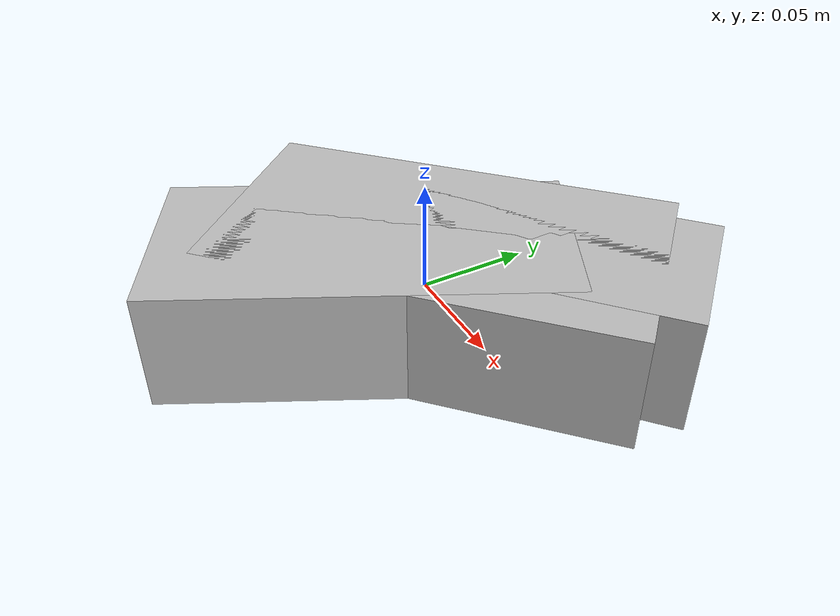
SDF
<?xml version="1.0"?>
<sdf version="1.7">
  <model name="baby_toy">
    <link name="baby_toy">
      <inertial>
        <pose>0.000412 0.005307 -0.000800 0 0 0</pose>
        <mass>0.05</mass>
        <inertia>
          <ixx>0.000133267836</ixx>
          <iyy>9.76383484e-05</iyy>
          <izz>0.000205542101</izz>
          <ixy>-6.13822785e-05</ixy>
          <ixz>1.64728072e-08</ixz>
          <iyz>2.1228989e-07</iyz>
        </inertia>
      </inertial>
      <visual name="box_0">
        <pose>-0.001300 0.009700 -0.000800 0 0 -0.808700</pose>
        <geometry>
          <box><size>0.102400 0.191800 0.055100</size></box>
        </geometry>
        <material>
          <diffuse>0.75 0.75 0.75 1</diffuse>
        </material>
      </visual>
      <collision name="box_0_volume">
        <pose>-0.001300 0.009700 -0.000800 0 0 -0.808700</pose>
        <geometry>
          <box><size>0.102400 0.191800 0.055100</size></box>
        </geometry>
        <drake:proximity_properties>
          <drake:compliant_hydroelastic/>
          <drake:hydroelastic_modulus> 3.0e7 </drake:hydroelastic_modulus>
          <drake:mesh_resolution_hint> 0.02 </drake:mesh_resolution_hint>
          <drake:hunt_crossley_dissipation>10</drake:hunt_crossley_dissipation>
          <drake:mu_dynamic>0.3</drake:mu_dynamic>
        </drake:proximity_properties>
      </collision>
      <visual name="box_1">
        <pose>-0.012000 -0.023300 -0.000800 0 0 -0.467900</pose>
        <geometry>
          <box><size>0.086200 0.180900 0.055100</size></box>
        </geometry>
        <material>
          <diffuse>0.75 0.75 0.75 1</diffuse>
        </material>
      </visual>
      <collision name="box_1_volume">
        <pose>-0.012000 -0.023300 -0.000800 0 0 -0.467900</pose>
        <geometry>
          <box><size>0.086200 0.180900 0.055100</size></box>
        </geometry>
        <drake:proximity_properties>
          <drake:compliant_hydroelastic/>
          <drake:hydroelastic_modulus> 3.0e7 </drake:hydroelastic_modulus>
          <drake:mesh_resolution_hint> 0.02 </drake:mesh_resolution_hint>
          <drake:hunt_crossley_dissipation>10</drake:hunt_crossley_dissipation>
          <drake:mu_dynamic>0.3</drake:mu_dynamic>
        </drake:proximity_properties>
      </collision>
      <visual name="box_2">
        <pose>0.019600 0.035700 -0.000800 0 0 -0.844300</pose>
        <geometry>
          <box><size>0.072100 0.164200 0.055100</size></box>
        </geometry>
        <material>
          <diffuse>0.75 0.75 0.75 1</diffuse>
        </material>
      </visual>
      <collision name="box_2_volume">
        <pose>0.019600 0.035700 -0.000800 0 0 -0.844300</pose>
        <geometry>
          <box><size>0.072100 0.164200 0.055100</size></box>
        </geometry>
        <drake:proximity_properties>
          <drake:compliant_hydroelastic/>
          <drake:hydroelastic_modulus> 3.0e7 </drake:hydroelastic_modulus>
          <drake:mesh_resolution_hint> 0.02 </drake:mesh_resolution_hint>
          <drake:hunt_crossley_dissipation>10</drake:hunt_crossley_dissipation>
          <drake:mu_dynamic>0.3</drake:mu_dynamic>
        </drake:proximity_properties>
      </collision>
    </link>
  </model>
</sdf>
